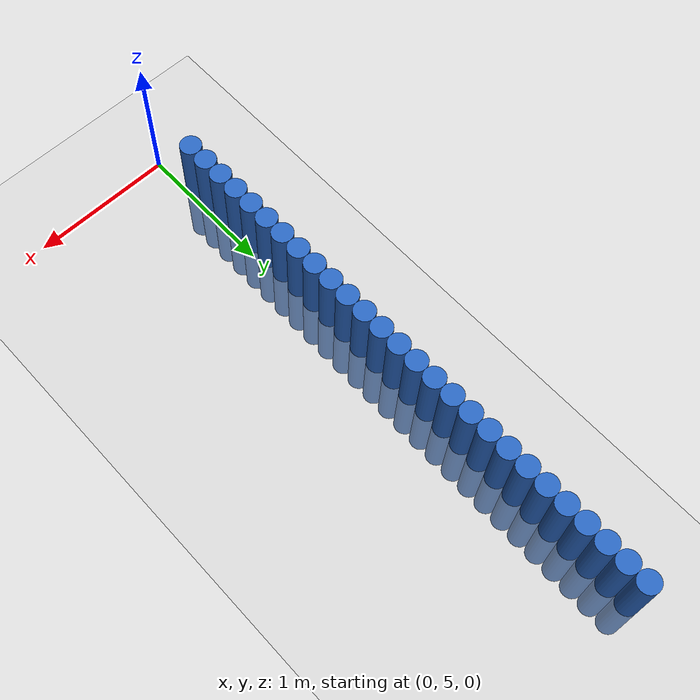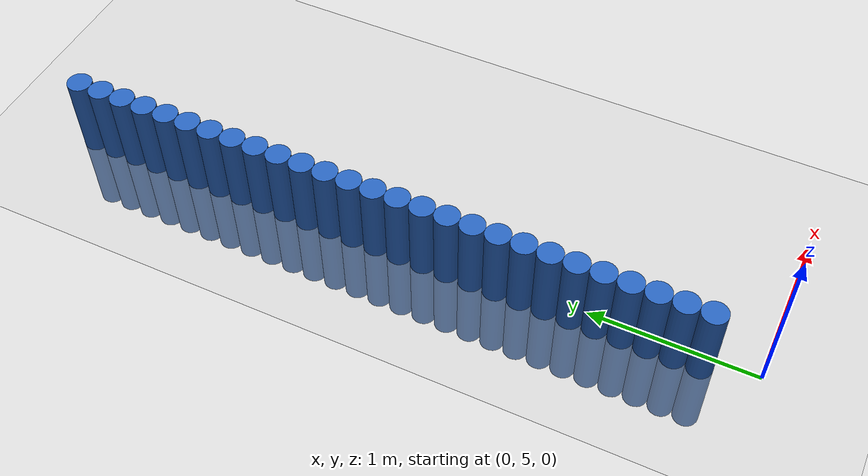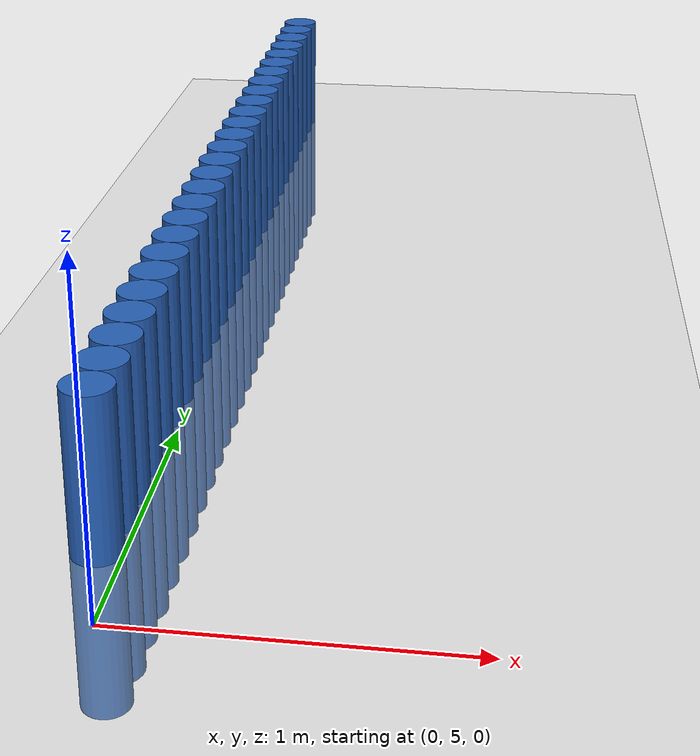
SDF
<sdf version="1.6">
 <world name="default">
  <model name="ground_plane">
   <static>1</static>
   <link name="link">
    <collision name="collision">
     <geometry><plane><normal>0 0 1</normal><size>100 100</size></plane></geometry>
     <surface><friction><ode><mu>100</mu><mu2>50</mu2></ode></friction></surface>
    </collision>
    <visual name="visual">
     <cast_shadows>0</cast_shadows>
     <geometry><plane><normal>0 0 1</normal><size>100 100</size></plane></geometry>
     <material>
      <script><uri>file://media/materials/scripts/gazebo.material</uri><name>Gazebo/Grey</name></script>
     </material>
    </visual>
   </link>
  </model>
  <model name="unit_cylinder_353">
   <static>1</static>
   <pose>-0.075000 5.325000 0.000000 0.000000 0.000000 0.000000</pose>
   <link name="link">
    <inertial>
     <mass>1</mass>
     <inertia><ixx>0.145833</ixx><ixy>0</ixy><ixz>0</ixz><iyy>0.145833</iyy><iyz>0</iyz><izz>0.125</izz></inertia>
    </inertial>
    <collision name="collision">
     <geometry><cylinder><radius>0.075000</radius><length>1</length></cylinder></geometry>
    </collision>
    <visual name="visual">
     <geometry><cylinder><radius>0.075000</radius><length>1</length></cylinder></geometry>
     <material>
      <ambient>0.152000 0.379000 0.720000 1</ambient>
      <diffuse>0.152000 0.379000 0.720000 1</diffuse>
     </material>
     <material>
      <script><name>Gazebo/Grey</name><uri>file://media/materials/scripts/gazebo.material</uri></script>
     </material>
    </visual>
   </link>
  </model>
  <model name="unit_cylinder_354">
   <static>1</static>
   <pose>-0.075000 5.475000 0.000000 0.000000 0.000000 0.000000</pose>
   <link name="link">
    <inertial>
     <mass>1</mass>
     <inertia><ixx>0.145833</ixx><ixy>0</ixy><ixz>0</ixz><iyy>0.145833</iyy><iyz>0</iyz><izz>0.125</izz></inertia>
    </inertial>
    <collision name="collision">
     <geometry><cylinder><radius>0.075000</radius><length>1</length></cylinder></geometry>
    </collision>
    <visual name="visual">
     <geometry><cylinder><radius>0.075000</radius><length>1</length></cylinder></geometry>
     <material>
      <ambient>0.152000 0.379000 0.720000 1</ambient>
      <diffuse>0.152000 0.379000 0.720000 1</diffuse>
     </material>
     <material>
      <script><name>Gazebo/Grey</name><uri>file://media/materials/scripts/gazebo.material</uri></script>
     </material>
    </visual>
   </link>
  </model>
  <model name="unit_cylinder_355">
   <static>1</static>
   <pose>-0.075000 5.625000 0.000000 0.000000 0.000000 0.000000</pose>
   <link name="link">
    <inertial>
     <mass>1</mass>
     <inertia><ixx>0.145833</ixx><ixy>0</ixy><ixz>0</ixz><iyy>0.145833</iyy><iyz>0</iyz><izz>0.125</izz></inertia>
    </inertial>
    <collision name="collision">
     <geometry><cylinder><radius>0.075000</radius><length>1</length></cylinder></geometry>
    </collision>
    <visual name="visual">
     <geometry><cylinder><radius>0.075000</radius><length>1</length></cylinder></geometry>
     <material>
      <ambient>0.152000 0.379000 0.720000 1</ambient>
      <diffuse>0.152000 0.379000 0.720000 1</diffuse>
     </material>
     <material>
      <script><name>Gazebo/Grey</name><uri>file://media/materials/scripts/gazebo.material</uri></script>
     </material>
    </visual>
   </link>
  </model>
  <model name="unit_cylinder_356">
   <static>1</static>
   <pose>-0.075000 5.775000 0.000000 0.000000 0.000000 0.000000</pose>
   <link name="link">
    <inertial>
     <mass>1</mass>
     <inertia><ixx>0.145833</ixx><ixy>0</ixy><ixz>0</ixz><iyy>0.145833</iyy><iyz>0</iyz><izz>0.125</izz></inertia>
    </inertial>
    <collision name="collision">
     <geometry><cylinder><radius>0.075000</radius><length>1</length></cylinder></geometry>
    </collision>
    <visual name="visual">
     <geometry><cylinder><radius>0.075000</radius><length>1</length></cylinder></geometry>
     <material>
      <ambient>0.152000 0.379000 0.720000 1</ambient>
      <diffuse>0.152000 0.379000 0.720000 1</diffuse>
     </material>
     <material>
      <script><name>Gazebo/Grey</name><uri>file://media/materials/scripts/gazebo.material</uri></script>
     </material>
    </visual>
   </link>
  </model>
  <model name="unit_cylinder_357">
   <static>1</static>
   <pose>-0.075000 5.925000 0.000000 0.000000 0.000000 0.000000</pose>
   <link name="link">
    <inertial>
     <mass>1</mass>
     <inertia><ixx>0.145833</ixx><ixy>0</ixy><ixz>0</ixz><iyy>0.145833</iyy><iyz>0</iyz><izz>0.125</izz></inertia>
    </inertial>
    <collision name="collision">
     <geometry><cylinder><radius>0.075000</radius><length>1</length></cylinder></geometry>
    </collision>
    <visual name="visual">
     <geometry><cylinder><radius>0.075000</radius><length>1</length></cylinder></geometry>
     <material>
      <ambient>0.152000 0.379000 0.720000 1</ambient>
      <diffuse>0.152000 0.379000 0.720000 1</diffuse>
     </material>
     <material>
      <script><name>Gazebo/Grey</name><uri>file://media/materials/scripts/gazebo.material</uri></script>
     </material>
    </visual>
   </link>
  </model>
  <model name="unit_cylinder_358">
   <static>1</static>
   <pose>-0.075000 6.075000 0.000000 0.000000 0.000000 0.000000</pose>
   <link name="link">
    <inertial>
     <mass>1</mass>
     <inertia><ixx>0.145833</ixx><ixy>0</ixy><ixz>0</ixz><iyy>0.145833</iyy><iyz>0</iyz><izz>0.125</izz></inertia>
    </inertial>
    <collision name="collision">
     <geometry><cylinder><radius>0.075000</radius><length>1</length></cylinder></geometry>
    </collision>
    <visual name="visual">
     <geometry><cylinder><radius>0.075000</radius><length>1</length></cylinder></geometry>
     <material>
      <ambient>0.152000 0.379000 0.720000 1</ambient>
      <diffuse>0.152000 0.379000 0.720000 1</diffuse>
     </material>
     <material>
      <script><name>Gazebo/Grey</name><uri>file://media/materials/scripts/gazebo.material</uri></script>
     </material>
    </visual>
   </link>
  </model>
  <model name="unit_cylinder_359">
   <static>1</static>
   <pose>-0.075000 6.225000 0.000000 0.000000 0.000000 0.000000</pose>
   <link name="link">
    <inertial>
     <mass>1</mass>
     <inertia><ixx>0.145833</ixx><ixy>0</ixy><ixz>0</ixz><iyy>0.145833</iyy><iyz>0</iyz><izz>0.125</izz></inertia>
    </inertial>
    <collision name="collision">
     <geometry><cylinder><radius>0.075000</radius><length>1</length></cylinder></geometry>
    </collision>
    <visual name="visual">
     <geometry><cylinder><radius>0.075000</radius><length>1</length></cylinder></geometry>
     <material>
      <ambient>0.152000 0.379000 0.720000 1</ambient>
      <diffuse>0.152000 0.379000 0.720000 1</diffuse>
     </material>
     <material>
      <script><name>Gazebo/Grey</name><uri>file://media/materials/scripts/gazebo.material</uri></script>
     </material>
    </visual>
   </link>
  </model>
  <model name="unit_cylinder_360">
   <static>1</static>
   <pose>-0.075000 6.375000 0.000000 0.000000 0.000000 0.000000</pose>
   <link name="link">
    <inertial>
     <mass>1</mass>
     <inertia><ixx>0.145833</ixx><ixy>0</ixy><ixz>0</ixz><iyy>0.145833</iyy><iyz>0</iyz><izz>0.125</izz></inertia>
    </inertial>
    <collision name="collision">
     <geometry><cylinder><radius>0.075000</radius><length>1</length></cylinder></geometry>
    </collision>
    <visual name="visual">
     <geometry><cylinder><radius>0.075000</radius><length>1</length></cylinder></geometry>
     <material>
      <ambient>0.152000 0.379000 0.720000 1</ambient>
      <diffuse>0.152000 0.379000 0.720000 1</diffuse>
     </material>
     <material>
      <script><name>Gazebo/Grey</name><uri>file://media/materials/scripts/gazebo.material</uri></script>
     </material>
    </visual>
   </link>
  </model>
  <model name="unit_cylinder_361">
   <static>1</static>
   <pose>-0.075000 6.525000 0.000000 0.000000 0.000000 0.000000</pose>
   <link name="link">
    <inertial>
     <mass>1</mass>
     <inertia><ixx>0.145833</ixx><ixy>0</ixy><ixz>0</ixz><iyy>0.145833</iyy><iyz>0</iyz><izz>0.125</izz></inertia>
    </inertial>
    <collision name="collision">
     <geometry><cylinder><radius>0.075000</radius><length>1</length></cylinder></geometry>
    </collision>
    <visual name="visual">
     <geometry><cylinder><radius>0.075000</radius><length>1</length></cylinder></geometry>
     <material>
      <ambient>0.152000 0.379000 0.720000 1</ambient>
      <diffuse>0.152000 0.379000 0.720000 1</diffuse>
     </material>
     <material>
      <script><name>Gazebo/Grey</name><uri>file://media/materials/scripts/gazebo.material</uri></script>
     </material>
    </visual>
   </link>
  </model>
  <model name="unit_cylinder_362">
   <static>1</static>
   <pose>-0.075000 6.675000 0.000000 0.000000 0.000000 0.000000</pose>
   <link name="link">
    <inertial>
     <mass>1</mass>
     <inertia><ixx>0.145833</ixx><ixy>0</ixy><ixz>0</ixz><iyy>0.145833</iyy><iyz>0</iyz><izz>0.125</izz></inertia>
    </inertial>
    <collision name="collision">
     <geometry><cylinder><radius>0.075000</radius><length>1</length></cylinder></geometry>
    </collision>
    <visual name="visual">
     <geometry><cylinder><radius>0.075000</radius><length>1</length></cylinder></geometry>
     <material>
      <ambient>0.152000 0.379000 0.720000 1</ambient>
      <diffuse>0.152000 0.379000 0.720000 1</diffuse>
     </material>
     <material>
      <script><name>Gazebo/Grey</name><uri>file://media/materials/scripts/gazebo.material</uri></script>
     </material>
    </visual>
   </link>
  </model>
  <model name="unit_cylinder_363">
   <static>1</static>
   <pose>-0.075000 6.825000 0.000000 0.000000 0.000000 0.000000</pose>
   <link name="link">
    <inertial>
     <mass>1</mass>
     <inertia><ixx>0.145833</ixx><ixy>0</ixy><ixz>0</ixz><iyy>0.145833</iyy><iyz>0</iyz><izz>0.125</izz></inertia>
    </inertial>
    <collision name="collision">
     <geometry><cylinder><radius>0.075000</radius><length>1</length></cylinder></geometry>
    </collision>
    <visual name="visual">
     <geometry><cylinder><radius>0.075000</radius><length>1</length></cylinder></geometry>
     <material>
      <ambient>0.152000 0.379000 0.720000 1</ambient>
      <diffuse>0.152000 0.379000 0.720000 1</diffuse>
     </material>
     <material>
      <script><name>Gazebo/Grey</name><uri>file://media/materials/scripts/gazebo.material</uri></script>
     </material>
    </visual>
   </link>
  </model>
  <model name="unit_cylinder_364">
   <static>1</static>
   <pose>-0.075000 6.975000 0.000000 0.000000 0.000000 0.000000</pose>
   <link name="link">
    <inertial>
     <mass>1</mass>
     <inertia><ixx>0.145833</ixx><ixy>0</ixy><ixz>0</ixz><iyy>0.145833</iyy><iyz>0</iyz><izz>0.125</izz></inertia>
    </inertial>
    <collision name="collision">
     <geometry><cylinder><radius>0.075000</radius><length>1</length></cylinder></geometry>
    </collision>
    <visual name="visual">
     <geometry><cylinder><radius>0.075000</radius><length>1</length></cylinder></geometry>
     <material>
      <ambient>0.152000 0.379000 0.720000 1</ambient>
      <diffuse>0.152000 0.379000 0.720000 1</diffuse>
     </material>
     <material>
      <script><name>Gazebo/Grey</name><uri>file://media/materials/scripts/gazebo.material</uri></script>
     </material>
    </visual>
   </link>
  </model>
  <model name="unit_cylinder_365">
   <static>1</static>
   <pose>-0.075000 7.125000 0.000000 0.000000 0.000000 0.000000</pose>
   <link name="link">
    <inertial>
     <mass>1</mass>
     <inertia><ixx>0.145833</ixx><ixy>0</ixy><ixz>0</ixz><iyy>0.145833</iyy><iyz>0</iyz><izz>0.125</izz></inertia>
    </inertial>
    <collision name="collision">
     <geometry><cylinder><radius>0.075000</radius><length>1</length></cylinder></geometry>
    </collision>
    <visual name="visual">
     <geometry><cylinder><radius>0.075000</radius><length>1</length></cylinder></geometry>
     <material>
      <ambient>0.152000 0.379000 0.720000 1</ambient>
      <diffuse>0.152000 0.379000 0.720000 1</diffuse>
     </material>
     <material>
      <script><name>Gazebo/Grey</name><uri>file://media/materials/scripts/gazebo.material</uri></script>
     </material>
    </visual>
   </link>
  </model>
  <model name="unit_cylinder_366">
   <static>1</static>
   <pose>-0.075000 7.275000 0.000000 0.000000 0.000000 0.000000</pose>
   <link name="link">
    <inertial>
     <mass>1</mass>
     <inertia><ixx>0.145833</ixx><ixy>0</ixy><ixz>0</ixz><iyy>0.145833</iyy><iyz>0</iyz><izz>0.125</izz></inertia>
    </inertial>
    <collision name="collision">
     <geometry><cylinder><radius>0.075000</radius><length>1</length></cylinder></geometry>
    </collision>
    <visual name="visual">
     <geometry><cylinder><radius>0.075000</radius><length>1</length></cylinder></geometry>
     <material>
      <ambient>0.152000 0.379000 0.720000 1</ambient>
      <diffuse>0.152000 0.379000 0.720000 1</diffuse>
     </material>
     <material>
      <script><name>Gazebo/Grey</name><uri>file://media/materials/scripts/gazebo.material</uri></script>
     </material>
    </visual>
   </link>
  </model>
  <model name="unit_cylinder_367">
   <static>1</static>
   <pose>-0.075000 7.425000 0.000000 0.000000 0.000000 0.000000</pose>
   <link name="link">
    <inertial>
     <mass>1</mass>
     <inertia><ixx>0.145833</ixx><ixy>0</ixy><ixz>0</ixz><iyy>0.145833</iyy><iyz>0</iyz><izz>0.125</izz></inertia>
    </inertial>
    <collision name="collision">
     <geometry><cylinder><radius>0.075000</radius><length>1</length></cylinder></geometry>
    </collision>
    <visual name="visual">
     <geometry><cylinder><radius>0.075000</radius><length>1</length></cylinder></geometry>
     <material>
      <ambient>0.152000 0.379000 0.720000 1</ambient>
      <diffuse>0.152000 0.379000 0.720000 1</diffuse>
     </material>
     <material>
      <script><name>Gazebo/Grey</name><uri>file://media/materials/scripts/gazebo.material</uri></script>
     </material>
    </visual>
   </link>
  </model>
  <model name="unit_cylinder_368">
   <static>1</static>
   <pose>-0.075000 7.575000 0.000000 0.000000 0.000000 0.000000</pose>
   <link name="link">
    <inertial>
     <mass>1</mass>
     <inertia><ixx>0.145833</ixx><ixy>0</ixy><ixz>0</ixz><iyy>0.145833</iyy><iyz>0</iyz><izz>0.125</izz></inertia>
    </inertial>
    <collision name="collision">
     <geometry><cylinder><radius>0.075000</radius><length>1</length></cylinder></geometry>
    </collision>
    <visual name="visual">
     <geometry><cylinder><radius>0.075000</radius><length>1</length></cylinder></geometry>
     <material>
      <ambient>0.152000 0.379000 0.720000 1</ambient>
      <diffuse>0.152000 0.379000 0.720000 1</diffuse>
     </material>
     <material>
      <script><name>Gazebo/Grey</name><uri>file://media/materials/scripts/gazebo.material</uri></script>
     </material>
    </visual>
   </link>
  </model>
  <model name="unit_cylinder_369">
   <static>1</static>
   <pose>-0.075000 7.725000 0.000000 0.000000 0.000000 0.000000</pose>
   <link name="link">
    <inertial>
     <mass>1</mass>
     <inertia><ixx>0.145833</ixx><ixy>0</ixy><ixz>0</ixz><iyy>0.145833</iyy><iyz>0</iyz><izz>0.125</izz></inertia>
    </inertial>
    <collision name="collision">
     <geometry><cylinder><radius>0.075000</radius><length>1</length></cylinder></geometry>
    </collision>
    <visual name="visual">
     <geometry><cylinder><radius>0.075000</radius><length>1</length></cylinder></geometry>
     <material>
      <ambient>0.152000 0.379000 0.720000 1</ambient>
      <diffuse>0.152000 0.379000 0.720000 1</diffuse>
     </material>
     <material>
      <script><name>Gazebo/Grey</name><uri>file://media/materials/scripts/gazebo.material</uri></script>
     </material>
    </visual>
   </link>
  </model>
  <model name="unit_cylinder_370">
   <static>1</static>
   <pose>-0.075000 7.875000 0.000000 0.000000 0.000000 0.000000</pose>
   <link name="link">
    <inertial>
     <mass>1</mass>
     <inertia><ixx>0.145833</ixx><ixy>0</ixy><ixz>0</ixz><iyy>0.145833</iyy><iyz>0</iyz><izz>0.125</izz></inertia>
    </inertial>
    <collision name="collision">
     <geometry><cylinder><radius>0.075000</radius><length>1</length></cylinder></geometry>
    </collision>
    <visual name="visual">
     <geometry><cylinder><radius>0.075000</radius><length>1</length></cylinder></geometry>
     <material>
      <ambient>0.152000 0.379000 0.720000 1</ambient>
      <diffuse>0.152000 0.379000 0.720000 1</diffuse>
     </material>
     <material>
      <script><name>Gazebo/Grey</name><uri>file://media/materials/scripts/gazebo.material</uri></script>
     </material>
    </visual>
   </link>
  </model>
  <model name="unit_cylinder_371">
   <static>1</static>
   <pose>-0.075000 8.025000 0.000000 0.000000 0.000000 0.000000</pose>
   <link name="link">
    <inertial>
     <mass>1</mass>
     <inertia><ixx>0.145833</ixx><ixy>0</ixy><ixz>0</ixz><iyy>0.145833</iyy><iyz>0</iyz><izz>0.125</izz></inertia>
    </inertial>
    <collision name="collision">
     <geometry><cylinder><radius>0.075000</radius><length>1</length></cylinder></geometry>
    </collision>
    <visual name="visual">
     <geometry><cylinder><radius>0.075000</radius><length>1</length></cylinder></geometry>
     <material>
      <ambient>0.152000 0.379000 0.720000 1</ambient>
      <diffuse>0.152000 0.379000 0.720000 1</diffuse>
     </material>
     <material>
      <script><name>Gazebo/Grey</name><uri>file://media/materials/scripts/gazebo.material</uri></script>
     </material>
    </visual>
   </link>
  </model>
  <model name="unit_cylinder_372">
   <static>1</static>
   <pose>-0.075000 8.175000 0.000000 0.000000 0.000000 0.000000</pose>
   <link name="link">
    <inertial>
     <mass>1</mass>
     <inertia><ixx>0.145833</ixx><ixy>0</ixy><ixz>0</ixz><iyy>0.145833</iyy><iyz>0</iyz><izz>0.125</izz></inertia>
    </inertial>
    <collision name="collision">
     <geometry><cylinder><radius>0.075000</radius><length>1</length></cylinder></geometry>
    </collision>
    <visual name="visual">
     <geometry><cylinder><radius>0.075000</radius><length>1</length></cylinder></geometry>
     <material>
      <ambient>0.152000 0.379000 0.720000 1</ambient>
      <diffuse>0.152000 0.379000 0.720000 1</diffuse>
     </material>
     <material>
      <script><name>Gazebo/Grey</name><uri>file://media/materials/scripts/gazebo.material</uri></script>
     </material>
    </visual>
   </link>
  </model>
  <model name="unit_cylinder_373">
   <static>1</static>
   <pose>-0.075000 8.325000 0.000000 0.000000 0.000000 0.000000</pose>
   <link name="link">
    <inertial>
     <mass>1</mass>
     <inertia><ixx>0.145833</ixx><ixy>0</ixy><ixz>0</ixz><iyy>0.145833</iyy><iyz>0</iyz><izz>0.125</izz></inertia>
    </inertial>
    <collision name="collision">
     <geometry><cylinder><radius>0.075000</radius><length>1</length></cylinder></geometry>
    </collision>
    <visual name="visual">
     <geometry><cylinder><radius>0.075000</radius><length>1</length></cylinder></geometry>
     <material>
      <ambient>0.152000 0.379000 0.720000 1</ambient>
      <diffuse>0.152000 0.379000 0.720000 1</diffuse>
     </material>
     <material>
      <script><name>Gazebo/Grey</name><uri>file://media/materials/scripts/gazebo.material</uri></script>
     </material>
    </visual>
   </link>
  </model>
  <model name="unit_cylinder_374">
   <static>1</static>
   <pose>-0.075000 8.475000 0.000000 0.000000 0.000000 0.000000</pose>
   <link name="link">
    <inertial>
     <mass>1</mass>
     <inertia><ixx>0.145833</ixx><ixy>0</ixy><ixz>0</ixz><iyy>0.145833</iyy><iyz>0</iyz><izz>0.125</izz></inertia>
    </inertial>
    <collision name="collision">
     <geometry><cylinder><radius>0.075000</radius><length>1</length></cylinder></geometry>
    </collision>
    <visual name="visual">
     <geometry><cylinder><radius>0.075000</radius><length>1</length></cylinder></geometry>
     <material>
      <ambient>0.152000 0.379000 0.720000 1</ambient>
      <diffuse>0.152000 0.379000 0.720000 1</diffuse>
     </material>
     <material>
      <script><name>Gazebo/Grey</name><uri>file://media/materials/scripts/gazebo.material</uri></script>
     </material>
    </visual>
   </link>
  </model>
  <model name="unit_cylinder_375">
   <static>1</static>
   <pose>-0.075000 8.625000 0.000000 0.000000 0.000000 0.000000</pose>
   <link name="link">
    <inertial>
     <mass>1</mass>
     <inertia><ixx>0.145833</ixx><ixy>0</ixy><ixz>0</ixz><iyy>0.145833</iyy><iyz>0</iyz><izz>0.125</izz></inertia>
    </inertial>
    <collision name="collision">
     <geometry><cylinder><radius>0.075000</radius><length>1</length></cylinder></geometry>
    </collision>
    <visual name="visual">
     <geometry><cylinder><radius>0.075000</radius><length>1</length></cylinder></geometry>
     <material>
      <ambient>0.152000 0.379000 0.720000 1</ambient>
      <diffuse>0.152000 0.379000 0.720000 1</diffuse>
     </material>
     <material>
      <script><name>Gazebo/Grey</name><uri>file://media/materials/scripts/gazebo.material</uri></script>
     </material>
    </visual>
   </link>
  </model>
  <model name="unit_cylinder_376">
   <static>1</static>
   <pose>-0.075000 8.775000 0.000000 0.000000 0.000000 0.000000</pose>
   <link name="link">
    <inertial>
     <mass>1</mass>
     <inertia><ixx>0.145833</ixx><ixy>0</ixy><ixz>0</ixz><iyy>0.145833</iyy><iyz>0</iyz><izz>0.125</izz></inertia>
    </inertial>
    <collision name="collision">
     <geometry><cylinder><radius>0.075000</radius><length>1</length></cylinder></geometry>
    </collision>
    <visual name="visual">
     <geometry><cylinder><radius>0.075000</radius><length>1</length></cylinder></geometry>
     <material>
      <ambient>0.152000 0.379000 0.720000 1</ambient>
      <diffuse>0.152000 0.379000 0.720000 1</diffuse>
     </material>
     <material>
      <script><name>Gazebo/Grey</name><uri>file://media/materials/scripts/gazebo.material</uri></script>
     </material>
    </visual>
   </link>
  </model>
  <model name="unit_cylinder_377">
   <static>1</static>
   <pose>-0.075000 8.925000 0.000000 0.000000 0.000000 0.000000</pose>
   <link name="link">
    <inertial>
     <mass>1</mass>
     <inertia><ixx>0.145833</ixx><ixy>0</ixy><ixz>0</ixz><iyy>0.145833</iyy><iyz>0</iyz><izz>0.125</izz></inertia>
    </inertial>
    <collision name="collision">
     <geometry><cylinder><radius>0.075000</radius><length>1</length></cylinder></geometry>
    </collision>
    <visual name="visual">
     <geometry><cylinder><radius>0.075000</radius><length>1</length></cylinder></geometry>
     <material>
      <ambient>0.152000 0.379000 0.720000 1</ambient>
      <diffuse>0.152000 0.379000 0.720000 1</diffuse>
     </material>
     <material>
      <script><name>Gazebo/Grey</name><uri>file://media/materials/scripts/gazebo.material</uri></script>
     </material>
    </visual>
   </link>
  </model>
  <model name="unit_cylinder_378">
   <static>1</static>
   <pose>-0.075000 9.075000 0.000000 0.000000 0.000000 0.000000</pose>
   <link name="link">
    <inertial>
     <mass>1</mass>
     <inertia><ixx>0.145833</ixx><ixy>0</ixy><ixz>0</ixz><iyy>0.145833</iyy><iyz>0</iyz><izz>0.125</izz></inertia>
    </inertial>
    <collision name="collision">
     <geometry><cylinder><radius>0.075000</radius><length>1</length></cylinder></geometry>
    </collision>
    <visual name="visual">
     <geometry><cylinder><radius>0.075000</radius><length>1</length></cylinder></geometry>
     <material>
      <ambient>0.152000 0.379000 0.720000 1</ambient>
      <diffuse>0.152000 0.379000 0.720000 1</diffuse>
     </material>
     <material>
      <script><name>Gazebo/Grey</name><uri>file://media/materials/scripts/gazebo.material</uri></script>
     </material>
    </visual>
   </link>
  </model>
  <model name="unit_cylinder_379">
   <static>1</static>
   <pose>-0.075000 9.225000 0.000000 0.000000 0.000000 0.000000</pose>
   <link name="link">
    <inertial>
     <mass>1</mass>
     <inertia><ixx>0.145833</ixx><ixy>0</ixy><ixz>0</ixz><iyy>0.145833</iyy><iyz>0</iyz><izz>0.125</izz></inertia>
    </inertial>
    <collision name="collision">
     <geometry><cylinder><radius>0.075000</radius><length>1</length></cylinder></geometry>
    </collision>
    <visual name="visual">
     <geometry><cylinder><radius>0.075000</radius><length>1</length></cylinder></geometry>
     <material>
      <ambient>0.152000 0.379000 0.720000 1</ambient>
      <diffuse>0.152000 0.379000 0.720000 1</diffuse>
     </material>
     <material>
      <script><name>Gazebo/Grey</name><uri>file://media/materials/scripts/gazebo.material</uri></script>
     </material>
    </visual>
   </link>
  </model>
 </world>
</sdf>
